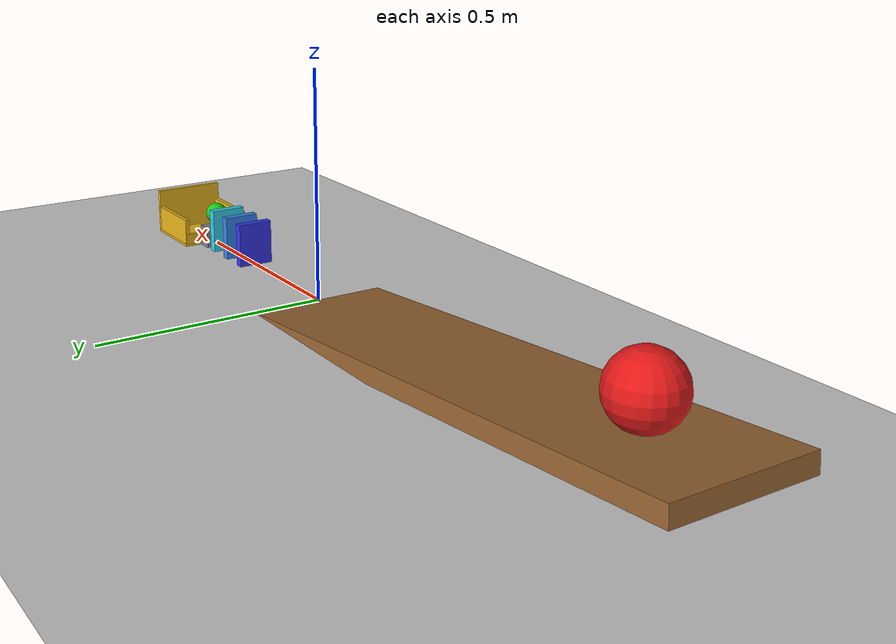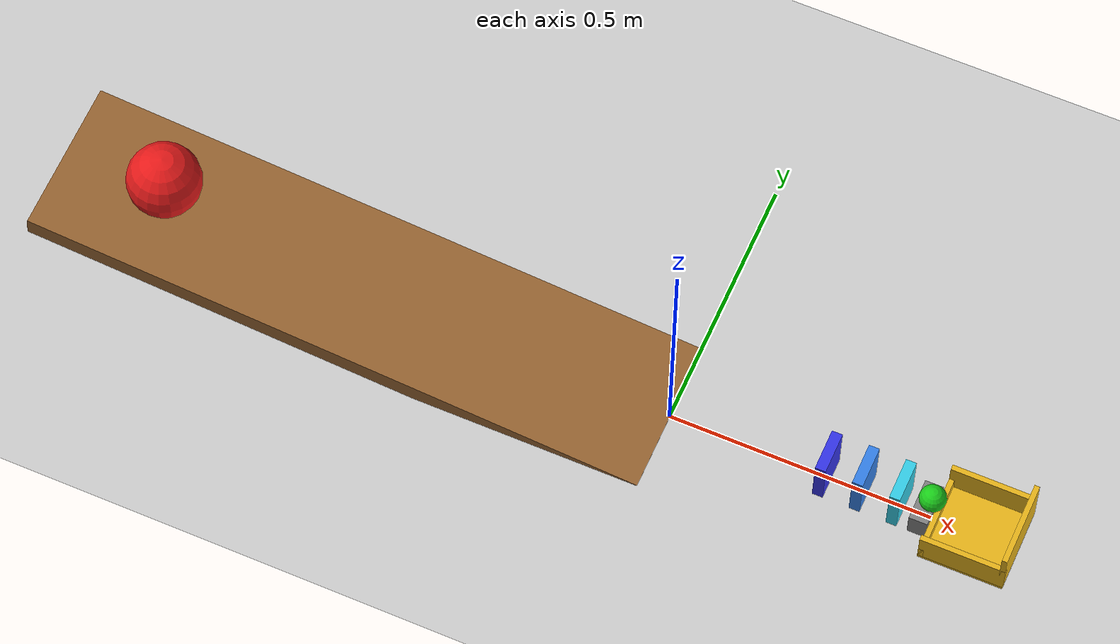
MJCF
<mujoco model="ramp_domino_cup">
  <compiler angle="degree"/>
  <option timestep="0.002" gravity="0 0 -9.81"/>
  <worldbody>
    <light name="light_main" pos="0 0 3" dir="0 0 -1" diffuse="0.8 0.8 0.8"/>
    <geom name="floor" type="plane" size="3 3 0.1" pos="0 0 0" friction="0.8 0.005 0.0001" rgba="0.8 0.8 0.8 1"/>

    <body name="ramp" pos="-0.5994 0 0.0324" euler="0 5 0">
      <geom name="ramp_slab" type="box" size="0.6 0.15 0.02" friction="0.8 0.005 0.0001" rgba="0.6 0.4 0.2 1"/>
    </body>

    <body name="ball1" pos="-0.9901 0 0.1569">
      <freejoint name="ball1_free"/>
      <geom name="ball1_geom" type="sphere" size="0.07" density="300" condim="6" friction="0.8 0.005 0.0005" rgba="0.9 0.1 0.1 1"/>
    </body>

    <body name="d1" pos="0.30 0 0.05">
      <freejoint name="d1_free"/>
      <geom name="d1_geom" type="box" size="0.01 0.04 0.05" density="650" friction="0.8 0.005 0.0001" rgba="0.2 0.2 0.9 1"/>
    </body>

    <body name="d2" pos="0.37 0 0.05">
      <freejoint name="d2_free"/>
      <geom name="d2_geom" type="box" size="0.01 0.04 0.05" density="650" friction="0.8 0.005 0.0001" rgba="0.2 0.5 0.9 1"/>
    </body>

    <body name="d3" pos="0.44 0 0.05">
      <freejoint name="d3_free"/>
      <geom name="d3_geom" type="box" size="0.01 0.04 0.05" density="650" friction="0.8 0.005 0.0001" rgba="0.2 0.8 0.9 1"/>
    </body>

    <body name="stand" pos="0.4875 0 0.025">
      <geom name="stand_block" type="box" size="0.0175 0.04 0.025" friction="0.8 0.005 0.0001" rgba="0.5 0.5 0.5 1"/>
    </body>

    <body name="ball2" pos="0.498 0 0.075">
      <freejoint name="ball2_free"/>
      <geom name="ball2_geom" type="sphere" size="0.025" density="1000" condim="6" friction="0.8 0.005 0.0008" rgba="0.1 0.8 0.1 1"/>
    </body>

    <body name="cup" pos="0 0 0">
      <geom name="cup_base" type="box" size="0.08 0.08 0.003" pos="0.585 0 0.003" friction="0.8 0.005 0.002" rgba="0.9 0.7 0.1 1"/>
      <geom name="cup_wall_near" type="box" size="0.005 0.08 0.012" pos="0.51 0 0.018" friction="0.8 0.005 0.002" rgba="0.9 0.7 0.1 1"/>
      <geom name="cup_wall_far" type="box" size="0.005 0.08 0.05" pos="0.66 0 0.056" friction="0.8 0.005 0.002" rgba="0.9 0.7 0.1 1"/>
      <geom name="cup_wall_left" type="box" size="0.08 0.005 0.03" pos="0.585 0.075 0.036" friction="0.8 0.005 0.002" rgba="0.9 0.7 0.1 1"/>
      <geom name="cup_wall_right" type="box" size="0.08 0.005 0.03" pos="0.585 -0.075 0.036" friction="0.8 0.005 0.002" rgba="0.9 0.7 0.1 1"/>
    </body>
  </worldbody>
</mujoco>
